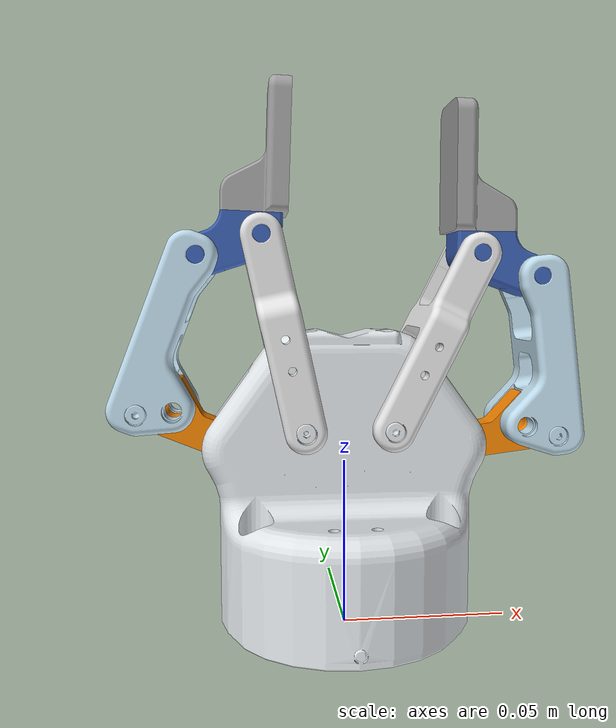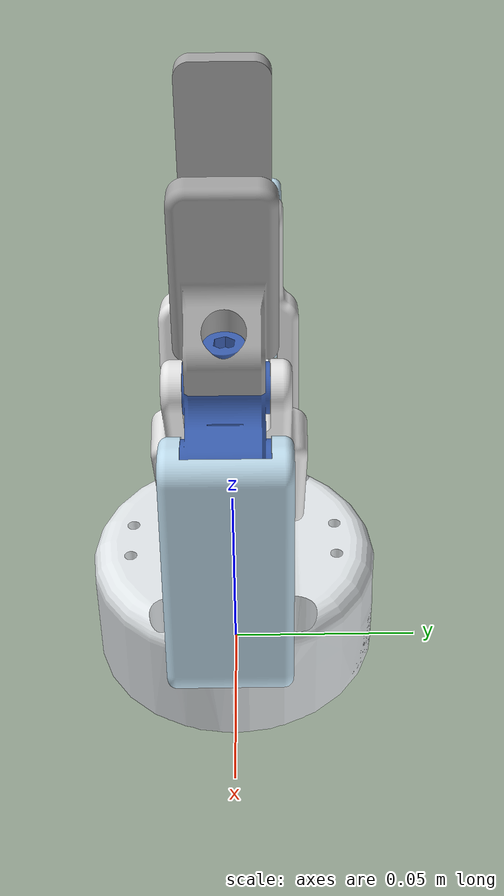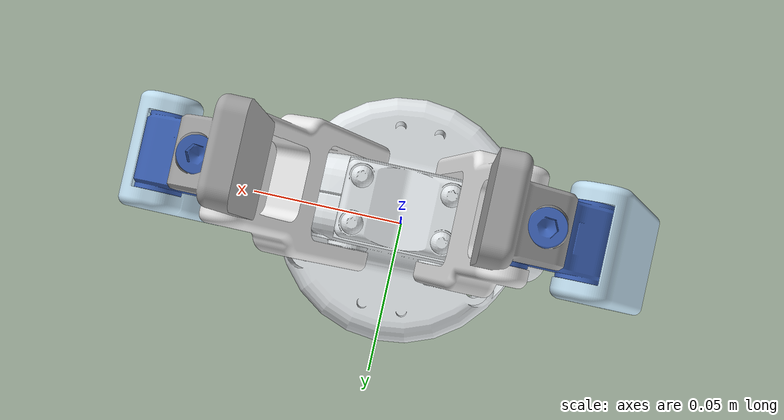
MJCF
<mujoco model="MuJoCo Model">
  <compiler angle="radian"/>

  <default>
    <geom type="mesh"/>
  </default>

  <asset>
    <mesh name="defeatured_2f-85_pad_open_base.step" file="/Users/mohammadhamid/Mujoco/onshape_to_mjcf_ws/onshape-to-mjcf/examples/robtiq_gripper/robtiq_gripper/assets/defeatured_2f-85_pad_open_base.step.stl"/>
    <mesh name="defeatured_2f-85_pad_open_finger1.step" file="/Users/mohammadhamid/Mujoco/onshape_to_mjcf_ws/onshape-to-mjcf/examples/robtiq_gripper/robtiq_gripper/assets/defeatured_2f-85_pad_open_finger1.step.stl"/>
    <mesh name="defeatured_2f-85_pad_open_finger2.step" file="/Users/mohammadhamid/Mujoco/onshape_to_mjcf_ws/onshape-to-mjcf/examples/robtiq_gripper/robtiq_gripper/assets/defeatured_2f-85_pad_open_finger2.step.stl"/>
    <mesh name="defeatured_2f-85_pad_open_finger4.step" file="/Users/mohammadhamid/Mujoco/onshape_to_mjcf_ws/onshape-to-mjcf/examples/robtiq_gripper/robtiq_gripper/assets/defeatured_2f-85_pad_open_finger4.step.stl"/>
    <mesh name="defeatured_2f-85_pad_open_fingertips.step" file="/Users/mohammadhamid/Mujoco/onshape_to_mjcf_ws/onshape-to-mjcf/examples/robtiq_gripper/robtiq_gripper/assets/defeatured_2f-85_pad_open_fingertips.step.stl"/>
    <mesh name="defeatured_2f-85_pad_open_finger3.step" file="/Users/mohammadhamid/Mujoco/onshape_to_mjcf_ws/onshape-to-mjcf/examples/robtiq_gripper/robtiq_gripper/assets/defeatured_2f-85_pad_open_finger3.step.stl"/>
  </asset>

  <worldbody>
    <body name="base">
      <geom pos="0 0 -0.000242" quat="0.707107 0.707107 0 0" rgba="0.898039 0.917647 0.929412 1" mesh="defeatured_2f-85_pad_open_base.step"/>
      <body name="defeatured_2f-85_pad_open_finger1.step" pos="-0.0306011 -0.0047 0.0546625" quat="0.681812 0.681812 0.187438 -0.187438">
        <joint name="Revolute 21" pos="0 0 0" axis="0 0 1" range="-3.14 3.14"/>
        <geom pos="0.0306011 -0.0549045 -0.0045" quat="1 0 0 0" rgba="0.972549 0.529412 0.00392157 1" mesh="defeatured_2f-85_pad_open_finger1.step"/>
        <body name="defeatured_2f-85_pad_open_finger2.step" pos="-0.0314249 -0.00453223 -0.009" quat="0.999915 0 0 0.0130135">
          <joint name="Revolute 11" pos="0 0 0" axis="0 0 1" range="-3.14 3.14"/>
          <geom pos="0.062026 -0.0503723 0.0047" quat="1 0 0 0" rgba="0.768627 0.886275 0.952941 1" mesh="defeatured_2f-85_pad_open_finger2.step"/>
          <body name="defeatured_2f-85_pad_open_finger4.step" pos="-0.00678336 0.0470334 0.0183" quat="0.971995 0 0 0.235001">
            <joint name="Revolute 31" pos="0 0 0" axis="0 0 1" range="-3.14 3.14"/>
            <geom pos="0.0688094 -0.0974056 -0.0135" quat="1 0 0 0" rgba="0.231373 0.380392 0.705882 1" mesh="defeatured_2f-85_pad_open_finger4.step"/>
            <body name="defeatured_2f-85_pad_open_fingertips.step" pos="0.00610173 0.0130152 -0.0135" quat="0 -1 0 0">
              <geom pos="0.0627076 0.110421 0" quat="0 1 0 0" rgba="0.647059 0.647059 0.647059 1" mesh="defeatured_2f-85_pad_open_fingertips.step"/>
            </body>
          </body>
        </body>
      </body>
      <body name="defeatured_2f-85_pad_open_finger3.step" pos="-0.0127 -0.0157 0.061178" quat="0.683337 0.683337 0.1818 -0.1818">
        <joint name="Cylindrical 21" pos="0 0 0" axis="0 0 1" type="slide" range="-3.14 3.14"/>
        <geom pos="0.0127 -0.06142 -0.0153" quat="1 0 0 0" rgba="0.917647 0.917647 0.917647 1" mesh="defeatured_2f-85_pad_open_finger3.step"/>
      </body>
      <body name="defeatured_2f-85_pad_open_finger1.step_2" pos="0.0306011 0 0.0546625" quat="-0.0924828 0.0924828 -0.701033 -0.701033">
        <joint name="Revolute 51" pos="0 0 0" axis="0 0 1" range="-3.14 3.14"/>
        <geom pos="0.0306011 -0.0549045 0" quat="1 0 0 0" rgba="0.972549 0.529412 0.00392157 1" mesh="defeatured_2f-85_pad_open_finger1.step"/>
        <body name="defeatured_2f-85_pad_open_finger2.step_2" pos="-0.0314249 -0.00453223 -0.0045" quat="0.999999 0 0 -0.00116018">
          <joint name="Revolute 61" pos="0 0 0" axis="0 0 1" range="-3.14 3.14"/>
          <geom pos="0.062026 -0.0503723 0.0047" quat="1 0 0 0" rgba="0.768627 0.886275 0.952941 1" mesh="defeatured_2f-85_pad_open_finger2.step"/>
          <body name="defeatured_2f-85_pad_open_finger4.step_3" pos="-0.00678336 0.0470334 -0.0089" quat="0 -0.991042 -0.133548 0">
            <joint name="Revolute 71" pos="0 0 0" axis="0 0 1" range="-3.14 3.14"/>
            <geom pos="0.0688094 0.0974056 -0.0135" quat="0 1 0 0" rgba="0.231373 0.380392 0.705882 1" mesh="defeatured_2f-85_pad_open_finger4.step"/>
            <body name="defeatured_2f-85_pad_open_fingertips.step_3" pos="0.00610173 -0.0130152 -0.0135" quat="1 0 0 0">
              <geom pos="0.0627076 0.110421 0" quat="0 1 0 0" rgba="0.647059 0.647059 0.647059 1" mesh="defeatured_2f-85_pad_open_fingertips.step"/>
            </body>
          </body>
        </body>
      </body>
      <body name="defeatured_2f-85_pad_open_finger3.step_2" pos="0.0127 -0.0151 0.061178" quat="0.583509 0.583509 0.399397 -0.399397">
        <joint name="Cylindrical 11" pos="0 0 0" axis="0 0 1" type="slide" range="-3.14 3.14"/>
        <geom pos="0.0127 -0.06142 -0.0153" quat="1 0 0 0" rgba="0.917647 0.917647 0.917647 1" mesh="defeatured_2f-85_pad_open_finger3.step"/>
      </body>
    </body>
  </worldbody>

  <equality>
    <connect body1="defeatured_2f-85_pad_open_finger3.step" body2="defeatured_2f-85_pad_open_finger4.step" anchor="-0.0382079 0.0425003 -0.0017"/>
    <connect body1="defeatured_2f-85_pad_open_finger3.step_2" body2="defeatured_2f-85_pad_open_finger4.step_3" anchor="-0.0382079 0.0425003 -0.0017"/>
  </equality>
</mujoco>
